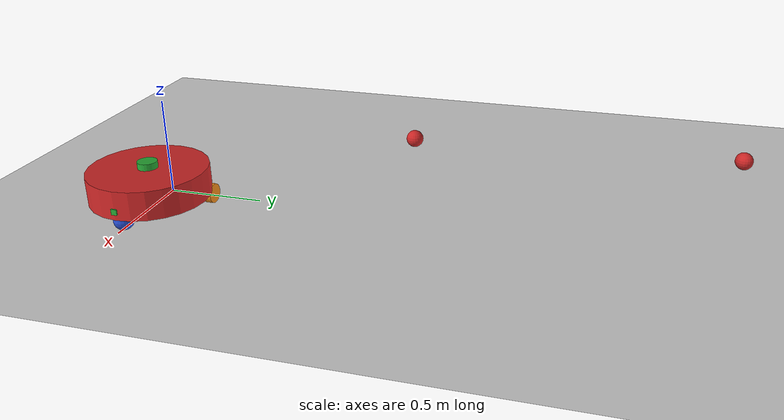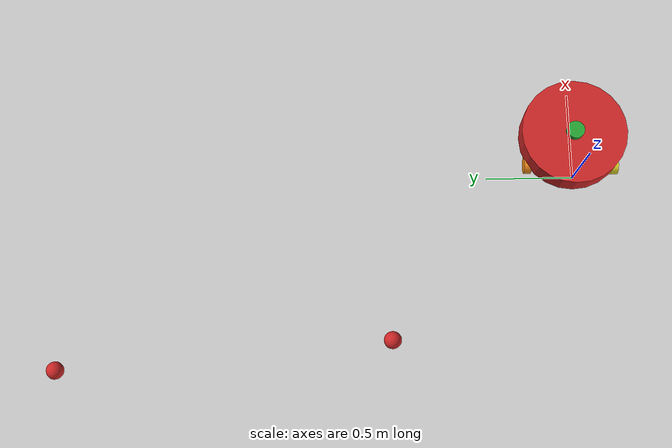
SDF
<sdf version="1.7">
 <world name="default">
  <model name="ground_plane">
   <static>1</static>
   <link name="link">
    <collision name="collision">
     <geometry><plane><normal>0 0 1</normal><size>100 100</size></plane></geometry>
     <surface>
      <contact><collide_bitmask>65535</collide_bitmask></contact>
      <friction><ode><mu>100</mu><mu2>50</mu2></ode></friction>
     </surface>
    </collision>
    <visual name="visual">
     <cast_shadows>0</cast_shadows>
     <geometry><plane><normal>0 0 1</normal><size>100 100</size></plane></geometry>
     <material>
      <script><uri>file://media/materials/scripts/gazebo.material</uri><name>Gazebo/Grey</name></script>
     </material>
    </visual>
   </link>
  </model>
  <model name="mobile_bot">
   <link name="base_link">
    <inertial>
     <pose>0.048 0 0.068 0 -0 0</pose>
     <mass>0.5</mass>
     <inertia>
      <ixx>0.00953633</ixx>
      <ixy>0</ixy>
      <ixz>0.001632</ixz>
      <iyy>0.0141443</iyy>
      <iyz>0</iyz>
      <izz>0.018333</izz>
     </inertia>
    </inertial>
    <collision name="base_link_fixed_joint_lump__round_body_collision">
     <pose>0 0 0.1 0 -0 0</pose>
     <geometry><cylinder><length>0.15</length><radius>0.3</radius></cylinder></geometry>
    </collision>
    <collision name="base_link_fixed_joint_lump__caster_wheel_collision_1">
     <pose>0.24 0 0 0 -0 0</pose>
     <geometry><sphere><radius>0.05</radius></sphere></geometry>
     <surface><friction><ode><mu>0.001</mu><mu2>0.001</mu2></ode></friction></surface>
    </collision>
    <collision name="base_link_fixed_joint_lump__lidar_link_collision_2">
     <pose>0 0 0.19 0 -0 0</pose>
     <geometry><cylinder><length>0.04</length><radius>0.05</radius></cylinder></geometry>
    </collision>
    <visual name="base_link_fixed_joint_lump__round_body_visual">
     <pose>0 0 0.1 0 -0 0</pose>
     <geometry><cylinder><length>0.15</length><radius>0.3</radius></cylinder></geometry>
     <material>
      <script><name>Gazebo/Red</name><uri>file://media/materials/scripts/gazebo.material</uri></script>
     </material>
    </visual>
    <visual name="base_link_fixed_joint_lump__camera_link_visual_1">
     <pose>0.3 0 0.07 0 -0 0</pose>
     <geometry><box><size>0.01 0.03 0.03</size></box></geometry>
     <material>
      <script><name>Gazebo/Green</name><uri>file://media/materials/scripts/gazebo.material</uri></script>
     </material>
    </visual>
    <visual name="base_link_fixed_joint_lump__caster_wheel_visual_2">
     <pose>0.24 0 0 0 -0 0</pose>
     <geometry><sphere><radius>0.05</radius></sphere></geometry>
     <material>
      <script><name>Gazebo/Blue</name><uri>file://media/materials/scripts/gazebo.material</uri></script>
     </material>
    </visual>
    <visual name="base_link_fixed_joint_lump__lidar_link_visual_3">
     <pose>0 0 0.19 0 -0 0</pose>
     <geometry><cylinder><length>0.04</length><radius>0.05</radius></cylinder></geometry>
     <material>
      <script><name>Gazebo/Green</name><uri>file://media/materials/scripts/gazebo.material</uri></script>
     </material>
    </visual>
    <sensor name="camera" type="camera">
     <visualize>1</visualize>
     <update_rate>10</update_rate>
     <camera>
      <horizontal_fov>1.5708</horizontal_fov>
      <image><format>R8G8B8</format><width>640</width><height>480</height></image>
      <clip><near>0.05</near><far>8</far></clip>
     </camera>
     <plugin name="camera_controller" filename="libgazebo_ros_camera.so">
      <frame_name>camera_link_optical</frame_name>
     </plugin>
     <pose>0.3 0 0.07 0 -0 0</pose>
    </sensor>
    <sensor name="laser" type="ray">
     <visualize>1</visualize>
     <update_rate>10</update_rate>
     <ray>
      <scan>
       <horizontal>
        <samples>180</samples>
        <min_angle>-0.7854</min_angle>
        <max_angle>0.7854</max_angle>
        <resolution>1</resolution>
       </horizontal>
       <vertical><samples>1</samples><min_angle>0</min_angle><max_angle>0</max_angle></vertical>
      </scan>
      <range><min>0.3</min><max>5</max></range>
     </ray>
     <plugin name="laser_controller" filename="libgazebo_ros_ray_sensor.so">
      <ros><argument>~/out:=scan</argument></ros>
      <output_type>sensor_msgs/LaserScan</output_type>
      <frame_name>lidar_link</frame_name>
     </plugin>
     <pose>0 0 0.19 0 -0 0</pose>
    </sensor>
   </link>
   <joint name="left_wheel_joint" type="revolute">
    <pose relative_to="base_link">-0.15 0.25 0 -1.57 0 0</pose>
    <parent>base_link</parent>
    <child>left_wheel</child>
    <axis>
     <xyz>0 0 1</xyz>
     <limit><lower>-1e+16</lower><upper>1e+16</upper></limit>
     <dynamics><spring_reference>0</spring_reference><spring_stiffness>0</spring_stiffness></dynamics>
    </axis>
   </joint>
   <link name="left_wheel">
    <pose relative_to="left_wheel_joint">0 0 0 0 -0 0</pose>
    <inertial>
     <mass>0.1</mass>
     <inertia>
      <ixx>8.33333e-05</ixx>
      <ixy>0</ixy>
      <ixz>0</ixz>
      <iyy>8.33333e-05</iyy>
      <iyz>0</iyz>
      <izz>0.000125</izz>
     </inertia>
    </inertial>
    <collision name="left_wheel_collision">
     <geometry><cylinder><length>0.04</length><radius>0.05</radius></cylinder></geometry>
    </collision>
    <visual name="left_wheel_visual">
     <geometry><cylinder><length>0.04</length><radius>0.05</radius></cylinder></geometry>
     <material>
      <script><name>Gazebo/Orange</name><uri>file://media/materials/scripts/gazebo.material</uri></script>
     </material>
    </visual>
   </link>
   <joint name="right_wheel_joint" type="revolute">
    <pose relative_to="base_link">-0.15 -0.25 0 1.57 -0 0</pose>
    <parent>base_link</parent>
    <child>right_wheel</child>
    <axis>
     <xyz>0 0 -1</xyz>
     <limit><lower>-1e+16</lower><upper>1e+16</upper></limit>
     <dynamics><spring_reference>0</spring_reference><spring_stiffness>0</spring_stiffness></dynamics>
    </axis>
   </joint>
   <link name="right_wheel">
    <pose relative_to="right_wheel_joint">0 0 0 0 -0 0</pose>
    <inertial>
     <mass>0.1</mass>
     <inertia>
      <ixx>8.33333e-05</ixx>
      <ixy>0</ixy>
      <ixz>0</ixz>
      <iyy>8.33333e-05</iyy>
      <iyz>0</iyz>
      <izz>0.000125</izz>
     </inertia>
    </inertial>
    <collision name="right_wheel_collision">
     <geometry><cylinder><length>0.04</length><radius>0.05</radius></cylinder></geometry>
    </collision>
    <visual name="right_wheel_visual">
     <geometry><cylinder><length>0.04</length><radius>0.05</radius></cylinder></geometry>
     <material>
      <script><name>Gazebo/Yellow</name><uri>file://media/materials/scripts/gazebo.material</uri></script>
     </material>
    </visual>
   </link>
   <static>0</static>
   <plugin name="diff_drive" filename="libgazebo_ros_diff_drive.so">
    <left_joint>left_wheel_joint</left_joint>
    <right_joint>right_wheel_joint</right_joint>
    <wheel_separation>0.50</wheel_separation>
    <wheel_diameter>0.1</wheel_diameter>
    <max_wheel_torque>200</max_wheel_torque>
    <max_wheel_acceleration>10.0</max_wheel_acceleration>
    <odometry_frame>odom</odometry_frame>
    <robot_base_frame>base_link</robot_base_frame>
    <publish_odom>1</publish_odom>
    <publish_odom_tf>1</publish_odom_tf>
    <publish_wheel_tf>1</publish_wheel_tf>
   </plugin>
   <pose>0.21217 0.012493 0.050008 1e-05 3.2e-05 -0.024561</pose>
  </model>
  <model name="yellow_ball">
   <link name="link">
    <inertial>
     <mass>1</mass>
     <inertia><ixx>0.1</ixx><ixy>0</ixy><ixz>0</ixz><iyy>0.1</iyy><iyz>0</iyz><izz>0.1</izz></inertia>
    </inertial>
    <visual name="visual">
     <geometry><sphere><radius>0.05</radius></sphere></geometry>
     <material>
      <script><name>Gazebo/Red</name><uri>file://media/materials/scripts/gazebo.material</uri></script>
      <shader type="pixel"><normal_map>__default__</normal_map></shader>
      <ambient>1 1 0 1</ambient>
      <diffuse>1 1 0 1</diffuse>
      <specular>0.1 0.1 0.1 1</specular>
      <emissive>0 0 0 1</emissive>
     </material>
    </visual>
    <collision name="collision">
     <geometry><sphere><radius>0.05</radius></sphere></geometry>
     <surface>
      <friction>
       <ode><mu>1</mu><mu2>1</mu2><fdir1>0 0 0</fdir1><slip1>0</slip1><slip2>0</slip2></ode>
       <torsional>
        <coefficient>1</coefficient>
        <patch_radius>0</patch_radius>
        <surface_radius>0</surface_radius>
        <use_patch_radius>1</use_patch_radius>
        <ode><slip>0</slip></ode>
       </torsional>
      </friction>
      <bounce><restitution_coefficient>0</restitution_coefficient><threshold>1e+06</threshold></bounce>
      <contact>
       <collide_without_contact>0</collide_without_contact>
       <collide_without_contact_bitmask>1</collide_without_contact_bitmask>
       <collide_bitmask>1</collide_bitmask>
       <ode>
        <soft_cfm>0</soft_cfm>
        <soft_erp>0.2</soft_erp>
        <kp>1e+13</kp>
        <kd>1</kd>
        <max_vel>0.01</max_vel>
        <min_depth>0</min_depth>
       </ode>
       <bullet>
        <split_impulse>1</split_impulse>
        <split_impulse_penetration_threshold>-0.01</split_impulse_penetration_threshold>
        <soft_cfm>0</soft_cfm>
        <soft_erp>0.2</soft_erp>
        <kp>1e+13</kp>
        <kd>1</kd>
       </bullet>
      </contact>
     </surface>
    </collision>
   </link>
   <static>0</static>
   <pose>-0.930631 1.07147 0.05 0 -0 0</pose>
  </model>
  <model name="white_ball">
   <link name="link">
    <inertial>
     <mass>1</mass>
     <inertia><ixx>0.1</ixx><ixy>0</ixy><ixz>0</ixz><iyy>0.1</iyy><iyz>0</iyz><izz>0.1</izz></inertia>
    </inertial>
    <visual name="visual">
     <geometry><sphere><radius>0.05</radius></sphere></geometry>
     <material>
      <script><name>Gazebo/Red</name><uri>file://media/materials/scripts/gazebo.material</uri></script>
      <shader type="pixel"><normal_map>__default__</normal_map></shader>
      <ambient>1 1 1 1</ambient>
      <diffuse>1 1 1 1</diffuse>
      <specular>0.1 0.1 0.1 1</specular>
      <emissive>0 0 0 1</emissive>
     </material>
    </visual>
    <collision name="collision">
     <geometry><sphere><radius>0.05</radius></sphere></geometry>
     <surface>
      <friction>
       <ode><mu>1</mu><mu2>1</mu2><fdir1>0 0 0</fdir1><slip1>0</slip1><slip2>0</slip2></ode>
       <torsional>
        <coefficient>1</coefficient>
        <patch_radius>0</patch_radius>
        <surface_radius>0</surface_radius>
        <use_patch_radius>1</use_patch_radius>
        <ode><slip>0</slip></ode>
       </torsional>
      </friction>
      <bounce><restitution_coefficient>0</restitution_coefficient><threshold>1e+06</threshold></bounce>
      <contact>
       <collide_without_contact>0</collide_without_contact>
       <collide_without_contact_bitmask>1</collide_without_contact_bitmask>
       <collide_bitmask>1</collide_bitmask>
       <ode>
        <soft_cfm>0</soft_cfm>
        <soft_erp>0.2</soft_erp>
        <kp>1e+13</kp>
        <kd>1</kd>
        <max_vel>0.01</max_vel>
        <min_depth>0</min_depth>
       </ode>
       <bullet>
        <split_impulse>1</split_impulse>
        <split_impulse_penetration_threshold>-0.01</split_impulse_penetration_threshold>
        <soft_cfm>0</soft_cfm>
        <soft_erp>0.2</soft_erp>
        <kp>1e+13</kp>
        <kd>1</kd>
       </bullet>
      </contact>
     </surface>
    </collision>
   </link>
   <static>0</static>
   <pose>-1.06162 2.95164 0.05 0 -0 0</pose>
  </model>
 </world>
</sdf>
